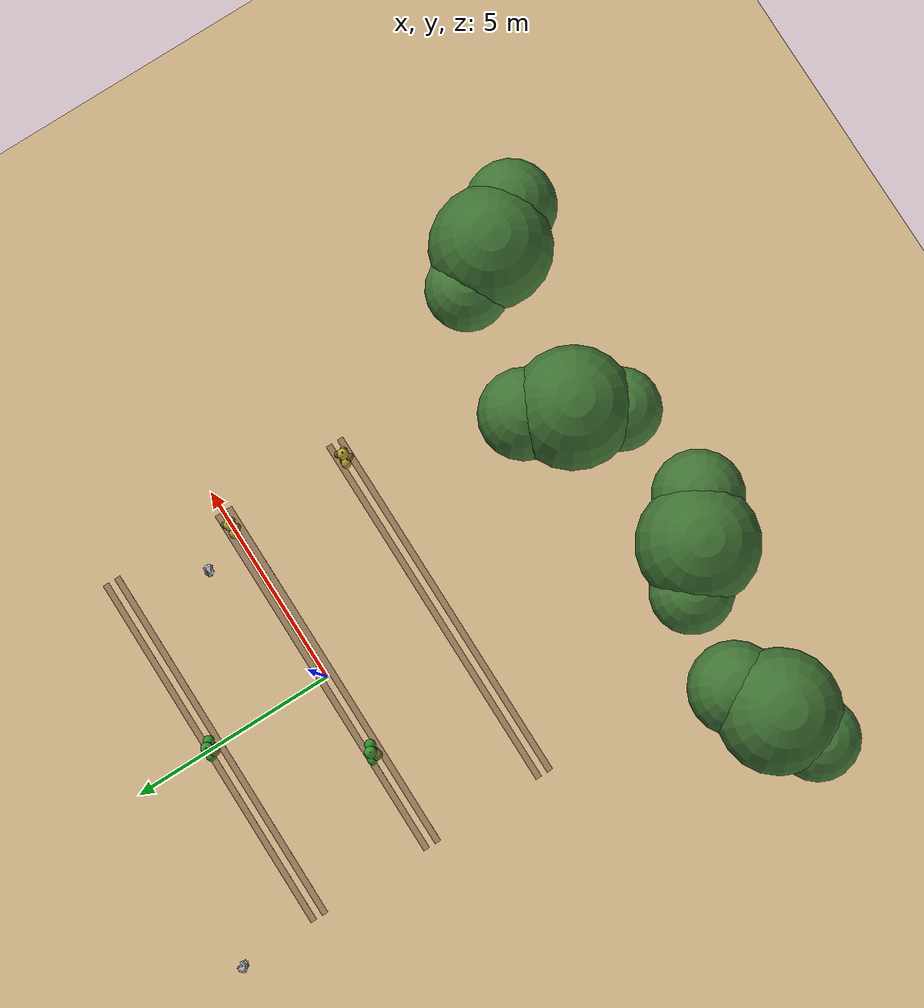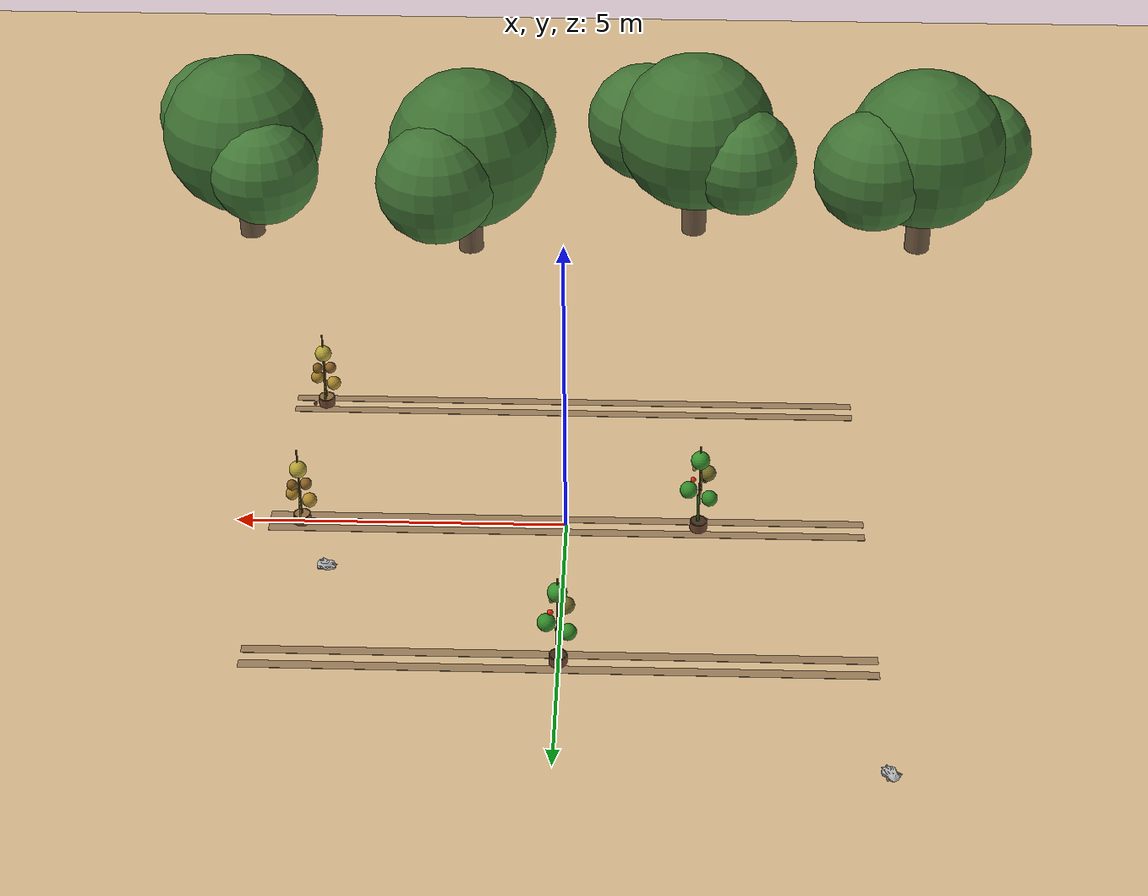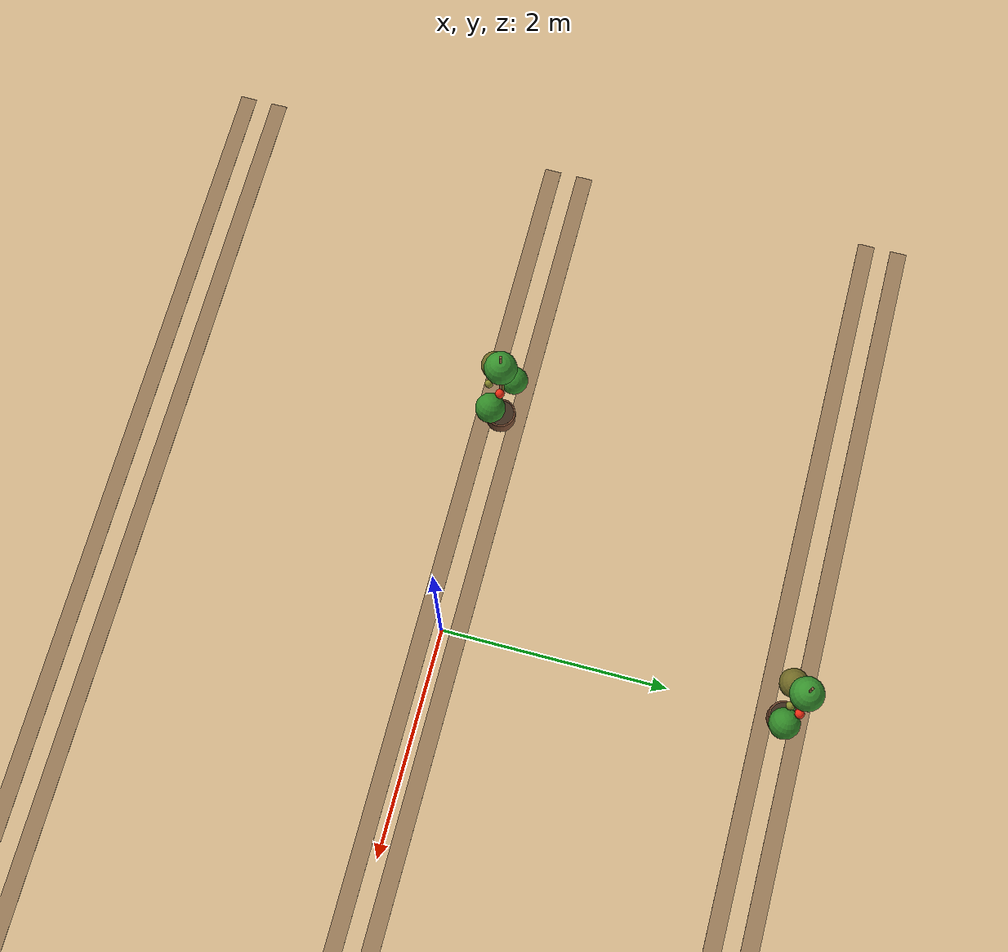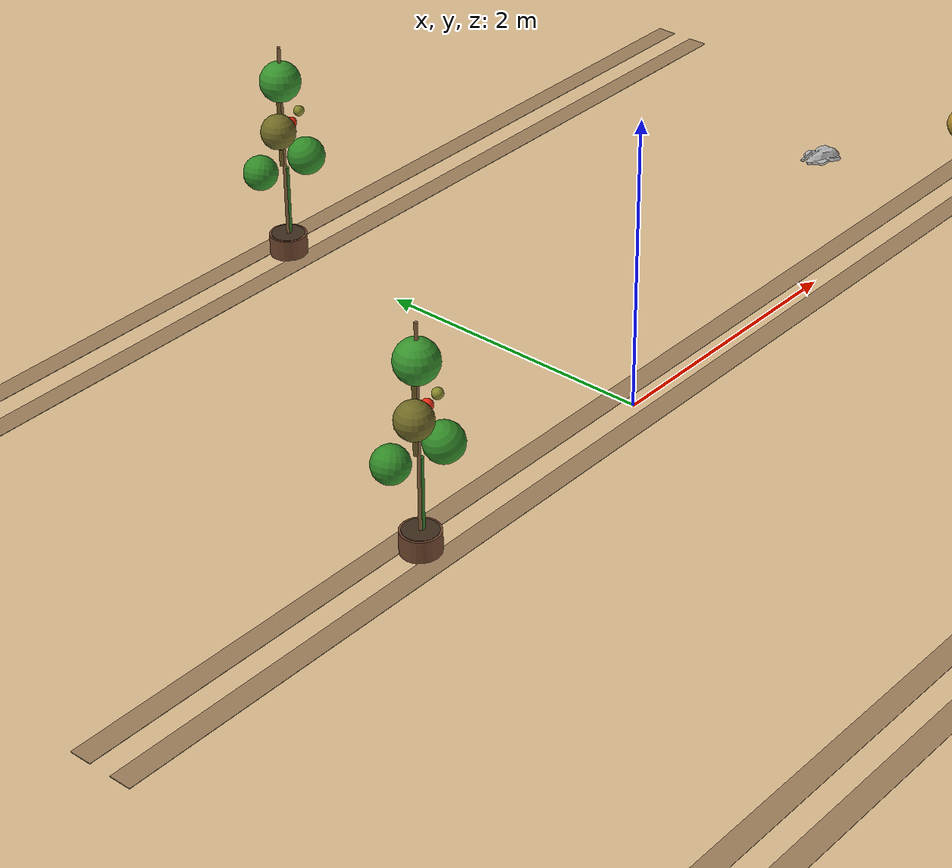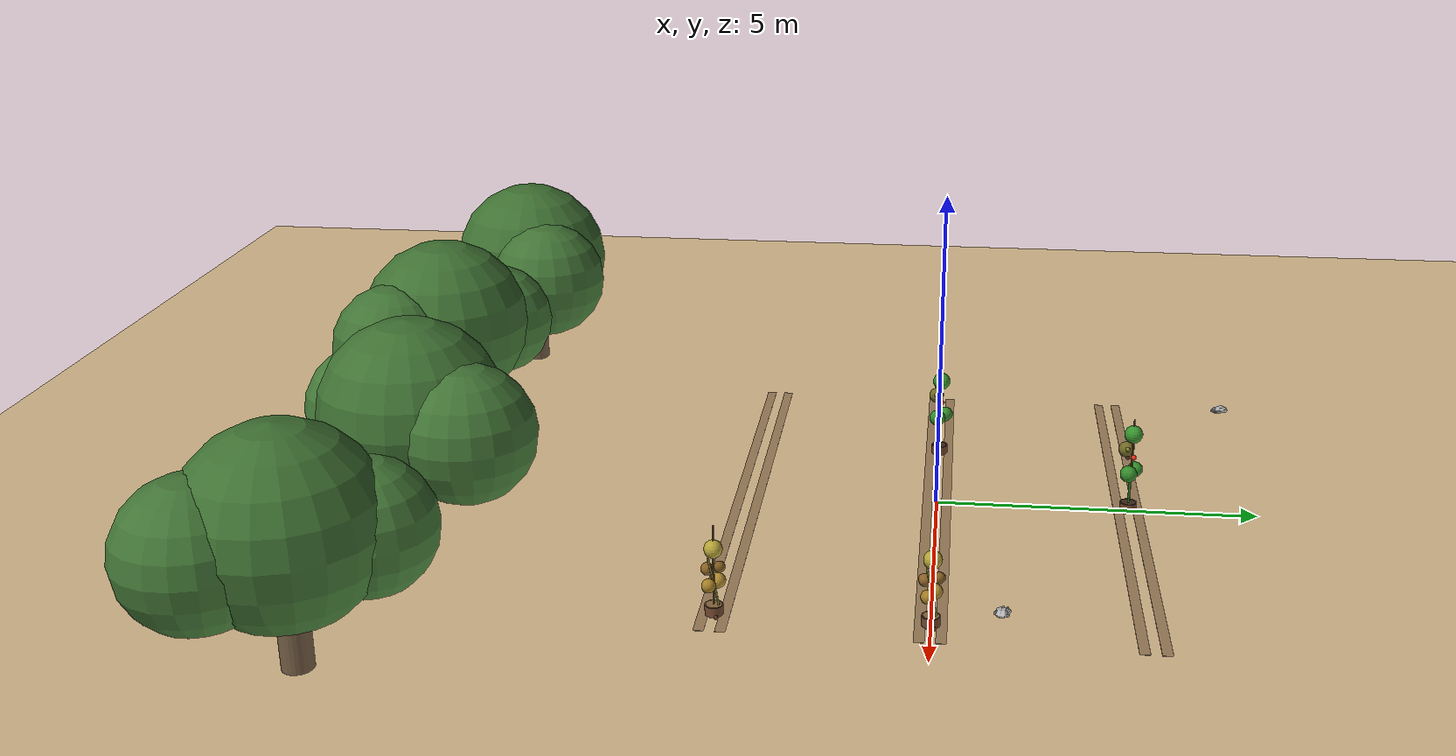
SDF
<sdf version="1.10">
 <world name="greenhouse_2026">
  <physics name="1ms" type="ignored">
   <max_step_size>0.001</max_step_size>
   <real_time_factor>1.0</real_time_factor>
  </physics>
  <plugin filename="gz-sim-physics-system" name="gz::sim::systems::Physics"/>
  <plugin filename="gz-sim-user-commands-system" name="gz::sim::systems::UserCommands"/>
  <plugin filename="gz-sim-scene-broadcaster-system" name="gz::sim::systems::SceneBroadcaster"/>
  <plugin filename="gz-sim-sensors-system" name="gz::sim::systems::Sensors">
   <render_engine>ogre2</render_engine>
  </plugin>
  <scene>
   <ambient>0.60 0.55 0.45 1</ambient>
   <background>0.86 0.80 0.68 1</background>
   <shadows>true</shadows>
  </scene>
  <light type="directional" name="sun">
   <pose>0 0 12 0 0 0</pose>
   <diffuse>1.00 0.93 0.75 1</diffuse>
   <specular>0.50 0.42 0.30 1</specular>
   <attenuation><range>1200</range><constant>0.85</constant><linear>0.01</linear></attenuation>
   <direction>-0.3 -0.4 -0.9</direction>
  </light>
  <light type="directional" name="fill_light">
   <pose>0 0 8 0 0 0</pose>
   <diffuse>0.32 0.28 0.20 1</diffuse>
   <direction>0.4 0.3 -0.7</direction>
   <cast_shadows>false</cast_shadows>
  </light>
  <model name="ground_plane">
   <static>true</static>
   <link name="link">
    <collision name="collision">
     <geometry><plane><normal>0 0 1</normal><size>200 200</size></plane></geometry>
    </collision>
    <visual name="visual">
     <geometry><plane><normal>0 0 1</normal><size>200 200</size></plane></geometry>
     <material>
      <ambient>0.70 0.58 0.42 1</ambient>
      <diffuse>0.86 0.74 0.56 1</diffuse>
      <specular>0.03 0.03 0.02 1</specular>
     </material>
    </visual>
   </link>
  </model>
  <model name="furrow_strips">
   <static>true</static>
   <link name="strip_row_0_north">
    <pose>0 -2.85 0.002 0 0 0</pose>
    <visual name="v">
     <geometry><box><size>9.0 0.15 0.004</size></box></geometry>
     <material><ambient>0.50 0.40 0.28 1</ambient><diffuse>0.62 0.50 0.36 1</diffuse></material>
    </visual>
   </link>
   <link name="strip_row_0_south">
    <pose>0 -3.15 0.002 0 0 0</pose>
    <visual name="v">
     <geometry><box><size>9.0 0.15 0.004</size></box></geometry>
     <material><ambient>0.50 0.40 0.28 1</ambient><diffuse>0.62 0.50 0.36 1</diffuse></material>
    </visual>
   </link>
   <link name="strip_row_1_north">
    <pose>0  0.15 0.002 0 0 0</pose>
    <visual name="v">
     <geometry><box><size>9.0 0.15 0.004</size></box></geometry>
     <material><ambient>0.50 0.40 0.28 1</ambient><diffuse>0.62 0.50 0.36 1</diffuse></material>
    </visual>
   </link>
   <link name="strip_row_1_south">
    <pose>0 -0.15 0.002 0 0 0</pose>
    <visual name="v">
     <geometry><box><size>9.0 0.15 0.004</size></box></geometry>
     <material><ambient>0.50 0.40 0.28 1</ambient><diffuse>0.62 0.50 0.36 1</diffuse></material>
    </visual>
   </link>
   <link name="strip_row_2_north">
    <pose>0  3.15 0.002 0 0 0</pose>
    <visual name="v">
     <geometry><box><size>9.0 0.15 0.004</size></box></geometry>
     <material><ambient>0.50 0.40 0.28 1</ambient><diffuse>0.62 0.50 0.36 1</diffuse></material>
    </visual>
   </link>
   <link name="strip_row_2_south">
    <pose>0  2.85 0.002 0 0 0</pose>
    <visual name="v">
     <geometry><box><size>9.0 0.15 0.004</size></box></geometry>
     <material><ambient>0.50 0.40 0.28 1</ambient><diffuse>0.62 0.50 0.36 1</diffuse></material>
    </visual>
   </link>
  </model>
  <include><name>tomato_0_4</name><pose>4.0 -3.0 0 0 0 0</pose><uri>model://tomato_plant_wilted</uri></include>
  <include>
   <name>tomato_1_1</name>
   <pose>-2.0  0.0 0 0 0 0</pose>
   <uri>model://tomato_plant_diseased</uri>
  </include>
  <include><name>tomato_1_4</name><pose>4.0  0.0 0 0 0 0</pose><uri>model://tomato_plant_wilted</uri></include>
  <include>
   <name>tomato_2_2</name>
   <pose>0.0  3.0 0 0 0 0</pose>
   <uri>model://tomato_plant_diseased</uri>
  </include>
  <include><name>fig_s1</name><pose>-6.0 -8.0 0 0 0  0.7</pose><uri>model://fig_tree</uri></include>
  <include><name>fig_s2</name><pose>-2.0 -8.5 0 0 0 -0.4</pose><uri>model://fig_tree</uri></include>
  <include><name>fig_s3</name><pose>2.0 -7.8 0 0 0  1.3</pose><uri>model://fig_tree</uri></include>
  <include><name>fig_s4</name><pose>6.0 -8.2 0 0 0 -0.8</pose><uri>model://fig_tree</uri></include>
  <include><name>chicken_1</name><pose>-4.5  5.0 0 0 0  0.6</pose><uri>model://chicken</uri></include>
  <include><name>chicken_2</name><pose>3.5  1.0 0 0 0 -1.8</pose><uri>model://chicken</uri></include>
 </world>
</sdf>

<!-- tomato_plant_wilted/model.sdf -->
<sdf version="1.10">
  <model name="tomato_plant_wilted">
    <static>true</static>

    <!-- Same pot + dry soil top -->
    <link name="pot">
      <pose>0 0 0.075 0 0 0</pose>
      <visual name="v"><geometry><cylinder><radius>0.13</radius><length>0.15</length></cylinder></geometry>
        <material><ambient>0.30 0.20 0.13 1</ambient><diffuse>0.45 0.28 0.18 1</diffuse></material>
      </visual>
      <collision name="c"><geometry><cylinder><radius>0.13</radius><length>0.15</length></cylinder></geometry></collision>
    </link>
    <link name="pot_soil">
      <pose>0 0 0.148 0 0 0</pose>
      <visual name="v"><geometry><cylinder><radius>0.115</radius><length>0.01</length></cylinder></geometry>
        <material><ambient>0.45 0.35 0.20 1</ambient><diffuse>0.55 0.42 0.25 1</diffuse></material>
      </visual>
    </link>

    <!-- Stake -->
    <link name="stake">
      <pose>0 0 0.75 0 0 0</pose>
      <visual name="v"><geometry><cylinder><radius>0.012</radius><length>1.2</length></cylinder></geometry>
        <material><ambient>0.35 0.25 0.15 1</ambient><diffuse>0.55 0.40 0.25 1</diffuse></material>
      </visual>
    </link>

    <!-- Brown/yellowing stem (smaller, broken) -->
    <link name="stem">
      <pose>0.015 0 0.50 0.20 0 0</pose>           <!-- tilted = drooping -->
      <visual name="v"><geometry><cylinder><radius>0.015</radius><length>0.75</length></cylinder></geometry>
        <material><ambient>0.45 0.40 0.15 1</ambient><diffuse>0.60 0.55 0.20 1</diffuse></material>
      </visual>
    </link>

    <!-- Drooping yellow-brown leaves (lower positions, hanging) -->
    <link name="leaf_droop_1">
      <pose>-0.14 0.04 0.45 1.0 0 0.3</pose>
      <visual name="v"><geometry><sphere><radius>0.11</radius></sphere></geometry>
        <material><ambient>0.55 0.42 0.12 1</ambient><diffuse>0.70 0.55 0.18 1</diffuse></material>
      </visual>
    </link>
    <link name="leaf_droop_2">
      <pose>0.13 -0.05 0.50 -0.9 0 -0.2</pose>
      <visual name="v"><geometry><sphere><radius>0.10</radius></sphere></geometry>
        <material><ambient>0.50 0.38 0.10 1</ambient><diffuse>0.65 0.50 0.15 1</diffuse></material>
      </visual>
    </link>
    <link name="leaf_brown_1">
      <pose>-0.08 -0.10 0.65 0.7 0 0</pose>
      <visual name="v"><geometry><sphere><radius>0.09</radius></sphere></geometry>
        <material><ambient>0.42 0.28 0.10 1</ambient><diffuse>0.55 0.38 0.15 1</diffuse></material>     <!-- brown -->
      </visual>
    </link>
    <link name="leaf_brown_2">
      <pose>0.09 0.10 0.78 0 0 0</pose>
      <visual name="v"><geometry><sphere><radius>0.08</radius></sphere></geometry>
        <material><ambient>0.38 0.25 0.08 1</ambient><diffuse>0.50 0.35 0.12 1</diffuse></material>
      </visual>
    </link>
    <link name="leaf_yellow_top">
      <pose>0.00 0.00 1.00 0 0 0</pose>
      <visual name="v"><geometry><sphere><radius>0.13</radius></sphere></geometry>
        <material><ambient>0.55 0.50 0.18 1</ambient><diffuse>0.72 0.65 0.22 1</diffuse></material>
      </visual>
    </link>

    <!-- One shriveled brown leftover fruit on the ground beside the pot -->
    <link name="dropped_fruit">
      <pose>0.18 0.05 0.04 0 0 0</pose>
      <visual name="v"><geometry><sphere><radius>0.030</radius></sphere></geometry>
        <material><ambient>0.30 0.15 0.08 1</ambient><diffuse>0.42 0.22 0.12 1</diffuse></material>
      </visual>
    </link>

    <joint name="j_stake" type="fixed"><parent>pot</parent><child>stake</child></joint>
    <joint name="j_soil"  type="fixed"><parent>pot</parent><child>pot_soil</child></joint>
    <joint name="j_stem"  type="fixed"><parent>stake</parent><child>stem</child></joint>
    <joint name="j_l1"    type="fixed"><parent>stake</parent><child>leaf_droop_1</child></joint>
    <joint name="j_l2"    type="fixed"><parent>stake</parent><child>leaf_droop_2</child></joint>
    <joint name="j_l3"    type="fixed"><parent>stake</parent><child>leaf_brown_1</child></joint>
    <joint name="j_l4"    type="fixed"><parent>stake</parent><child>leaf_brown_2</child></joint>
    <joint name="j_l5"    type="fixed"><parent>stake</parent><child>leaf_yellow_top</child></joint>
    <joint name="j_fr"    type="fixed"><parent>pot</parent><child>dropped_fruit</child></joint>
  </model>
</sdf>

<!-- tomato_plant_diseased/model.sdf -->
<sdf version="1.10">
  <model name="tomato_plant_diseased">
    <static>true</static>

    <link name="pot">
      <pose>0 0 0.075 0 0 0</pose>
      <visual name="v"><geometry><cylinder><radius>0.13</radius><length>0.15</length></cylinder></geometry>
        <material><ambient>0.30 0.20 0.13 1</ambient><diffuse>0.45 0.28 0.18 1</diffuse></material>
      </visual>
      <collision name="c"><geometry><cylinder><radius>0.13</radius><length>0.15</length></cylinder></geometry></collision>
    </link>
    <link name="pot_soil">
      <pose>0 0 0.148 0 0 0</pose>
      <visual name="v"><geometry><cylinder><radius>0.115</radius><length>0.01</length></cylinder></geometry>
        <material><ambient>0.18 0.13 0.08 1</ambient><diffuse>0.25 0.18 0.12 1</diffuse></material>
      </visual>
    </link>

    <link name="stake">
      <pose>0 0 0.85 0 0 0</pose>
      <visual name="v"><geometry><cylinder><radius>0.012</radius><length>1.4</length></cylinder></geometry>
        <material><ambient>0.35 0.25 0.15 1</ambient><diffuse>0.55 0.40 0.25 1</diffuse></material>
      </visual>
    </link>

    <!-- Stem (greener at base, brown at top — typical late blight progression) -->
    <link name="stem_lower">
      <pose>0.015 0 0.40 0 0 0</pose>
      <visual name="v"><geometry><cylinder><radius>0.018</radius><length>0.50</length></cylinder></geometry>
        <material><ambient>0.14 0.30 0.10 1</ambient><diffuse>0.20 0.48 0.15 1</diffuse></material>
      </visual>
    </link>
    <link name="stem_upper">
      <pose>-0.015 0.010 0.95 0 0 0</pose>
      <visual name="v"><geometry><cylinder><radius>0.015</radius><length>0.55</length></cylinder></geometry>
        <material><ambient>0.30 0.25 0.10 1</ambient><diffuse>0.45 0.38 0.15 1</diffuse></material>
      </visual>
    </link>

    <!-- Mostly green leaves with one brown patch — disease in progress -->
    <link name="leaves_healthy_l">
      <pose>-0.15 0.08 0.65 0 0.4 0.3</pose>
      <visual name="v"><geometry><sphere><radius>0.12</radius></sphere></geometry>
        <material><ambient>0.14 0.36 0.11 1</ambient><diffuse>0.20 0.55 0.16 1</diffuse></material>
      </visual>
    </link>
    <link name="leaves_healthy_r">
      <pose>0.16 -0.05 0.70 0 -0.4 -0.2</pose>
      <visual name="v"><geometry><sphere><radius>0.13</radius></sphere></geometry>
        <material><ambient>0.14 0.36 0.11 1</ambient><diffuse>0.20 0.55 0.16 1</diffuse></material>
      </visual>
    </link>
    <link name="leaves_blighted">
      <pose>-0.12 -0.08 1.00 0 0 0</pose>
      <visual name="v"><geometry><sphere><radius>0.12</radius></sphere></geometry>
        <material><ambient>0.30 0.32 0.10 1</ambient><diffuse>0.45 0.42 0.15 1</diffuse></material>     <!-- yellow-green -->
      </visual>
    </link>
    <link name="leaves_top">
      <pose>0.00 0.00 1.30 0 0 0</pose>
      <visual name="v"><geometry><sphere><radius>0.14</radius></sphere></geometry>
        <material><ambient>0.16 0.40 0.12 1</ambient><diffuse>0.22 0.58 0.18 1</diffuse></material>
      </visual>
    </link>

    <!-- Dark blight spots on the leaves (small dark spheres) -->
    <link name="spot_1"><pose>-0.12 0.10 0.66 0 0 0</pose>
      <visual name="v"><geometry><sphere><radius>0.020</radius></sphere></geometry>
        <material><ambient>0.10 0.06 0.04 1</ambient><diffuse>0.15 0.08 0.05 1</diffuse></material>
      </visual>
    </link>
    <link name="spot_2"><pose>-0.18 0.04 0.67 0 0 0</pose>
      <visual name="v"><geometry><sphere><radius>0.018</radius></sphere></geometry>
        <material><ambient>0.10 0.06 0.04 1</ambient><diffuse>0.15 0.08 0.05 1</diffuse></material>
      </visual>
    </link>
    <link name="spot_3"><pose>0.18 -0.04 0.71 0 0 0</pose>
      <visual name="v"><geometry><sphere><radius>0.022</radius></sphere></geometry>
        <material><ambient>0.10 0.06 0.04 1</ambient><diffuse>0.15 0.08 0.05 1</diffuse></material>
      </visual>
    </link>

    <!-- Aphid cluster (tiny yellowish dots on a leaf) — VLA target class "pest" -->
    <link name="aphid_a"><pose>0.13 -0.02 0.72 0 0 0</pose>
      <visual name="v"><geometry><sphere><radius>0.005</radius></sphere></geometry>
        <material><ambient>0.55 0.50 0.10 1</ambient><diffuse>0.75 0.68 0.15 1</diffuse></material>
      </visual>
    </link>
    <link name="aphid_b"><pose>0.14 -0.05 0.71 0 0 0</pose>
      <visual name="v"><geometry><sphere><radius>0.005</radius></sphere></geometry>
        <material><ambient>0.55 0.50 0.10 1</ambient><diffuse>0.75 0.68 0.15 1</diffuse></material>
      </visual>
    </link>
    <link name="aphid_c"><pose>0.15 -0.03 0.73 0 0 0</pose>
      <visual name="v"><geometry><sphere><radius>0.005</radius></sphere></geometry>
        <material><ambient>0.55 0.50 0.10 1</ambient><diffuse>0.75 0.68 0.15 1</diffuse></material>
      </visual>
    </link>
    <link name="aphid_d"><pose>0.155 -0.045 0.715 0 0 0</pose>
      <visual name="v"><geometry><sphere><radius>0.005</radius></sphere></geometry>
        <material><ambient>0.55 0.50 0.10 1</ambient><diffuse>0.75 0.68 0.15 1</diffuse></material>
      </visual>
    </link>

    <!-- A caterpillar resting on a leaf (small green elongated cylinder) -->
    <link name="caterpillar">
      <pose>-0.10 0.05 0.66 0 1.5708 0.3</pose>
      <visual name="v"><geometry><cylinder><radius>0.010</radius><length>0.05</length></cylinder></geometry>
        <material><ambient>0.40 0.55 0.12 1</ambient><diffuse>0.55 0.72 0.18 1</diffuse></material>
      </visual>
    </link>

    <!-- Fruits: 1 healthy red, 1 rotted/black, 1 unripe with blight -->
    <link name="fruit_healthy"><pose>0.10 0.02 0.95 0 0 0</pose>
      <visual name="v"><geometry><sphere><radius>0.040</radius></sphere></geometry>
        <material><ambient>0.75 0.10 0.05 1</ambient><diffuse>0.95 0.18 0.08 1</diffuse><specular>0.4 0.1 0.1 1</specular></material>
      </visual>
      <collision name="c"><geometry><sphere><radius>0.040</radius></sphere></geometry></collision>
    </link>
    <link name="fruit_rotted"><pose>-0.08 -0.05 0.88 0 0 0</pose>
      <visual name="v"><geometry><sphere><radius>0.038</radius></sphere></geometry>
        <material><ambient>0.18 0.10 0.05 1</ambient><diffuse>0.28 0.16 0.08 1</diffuse></material>           <!-- blackened rot -->
      </visual>
      <collision name="c"><geometry><sphere><radius>0.038</radius></sphere></geometry></collision>
    </link>
    <link name="fruit_blighted"><pose>0.08 -0.08 1.08 0 0 0</pose>
      <visual name="v"><geometry><sphere><radius>0.036</radius></sphere></geometry>
        <material><ambient>0.40 0.45 0.12 1</ambient><diffuse>0.55 0.55 0.18 1</diffuse></material>           <!-- sickly yellow-green -->
      </visual>
      <collision name="c"><geometry><sphere><radius>0.036</radius></sphere></geometry></collision>
    </link>

    <!-- Joints -->
    <joint name="j_stake" type="fixed"><parent>pot</parent><child>stake</child></joint>
    <joint name="j_soil"  type="fixed"><parent>pot</parent><child>pot_soil</child></joint>
    <joint name="j_sl"    type="fixed"><parent>stake</parent><child>stem_lower</child></joint>
    <joint name="j_su"    type="fixed"><parent>stake</parent><child>stem_upper</child></joint>
    <joint name="j_lh_l"  type="fixed"><parent>stake</parent><child>leaves_healthy_l</child></joint>
    <joint name="j_lh_r"  type="fixed"><parent>stake</parent><child>leaves_healthy_r</child></joint>
    <joint name="j_lb"    type="fixed"><parent>stake</parent><child>leaves_blighted</child></joint>
    <joint name="j_lt"    type="fixed"><parent>stake</parent><child>leaves_top</child></joint>
    <joint name="j_sp1"   type="fixed"><parent>stake</parent><child>spot_1</child></joint>
    <joint name="j_sp2"   type="fixed"><parent>stake</parent><child>spot_2</child></joint>
    <joint name="j_sp3"   type="fixed"><parent>stake</parent><child>spot_3</child></joint>
    <joint name="j_a1"    type="fixed"><parent>stake</parent><child>aphid_a</child></joint>
    <joint name="j_a2"    type="fixed"><parent>stake</parent><child>aphid_b</child></joint>
    <joint name="j_a3"    type="fixed"><parent>stake</parent><child>aphid_c</child></joint>
    <joint name="j_a4"    type="fixed"><parent>stake</parent><child>aphid_d</child></joint>
    <joint name="j_cat"   type="fixed"><parent>stake</parent><child>caterpillar</child></joint>
    <joint name="j_fh"    type="fixed"><parent>stake</parent><child>fruit_healthy</child></joint>
    <joint name="j_fr"    type="fixed"><parent>stake</parent><child>fruit_rotted</child></joint>
    <joint name="j_fb"    type="fixed"><parent>stake</parent><child>fruit_blighted</child></joint>
  </model>
</sdf>

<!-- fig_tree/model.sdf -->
<sdf version="1.10">
  <model name="fig_tree">
    <static>true</static>

    <!-- Lower trunk — thick, slightly knobby look (two cylinder segments) -->
    <link name="trunk_lower">
      <pose>0 0 0.40 0 0 0</pose>
      <visual name="v"><geometry><cylinder><radius>0.22</radius><length>0.80</length></cylinder></geometry>
        <material>
          <ambient>0.30 0.24 0.18 1</ambient>
          <diffuse>0.45 0.36 0.26 1</diffuse>
        </material>
      </visual>
      <collision name="c"><geometry><cylinder><radius>0.22</radius><length>0.80</length></cylinder></geometry></collision>
    </link>
    <link name="trunk_upper">
      <pose>0.05 0 1.15 0 0.10 0</pose>           <!-- slight tilt for character -->
      <visual name="v"><geometry><cylinder><radius>0.18</radius><length>0.70</length></cylinder></geometry>
        <material>
          <ambient>0.32 0.26 0.19 1</ambient>
          <diffuse>0.48 0.38 0.28 1</diffuse>
        </material>
      </visual>
    </link>

    <!-- Broad, low canopy — characteristic of figs (3 overlapping spheres) -->
    <link name="canopy_main">
      <pose>0 0 2.05 0 0 0</pose>
      <visual name="v"><geometry><sphere><radius>1.40</radius></sphere></geometry>
        <material>
          <ambient>0.18 0.32 0.15 1</ambient>     <!-- darker green than olive -->
          <diffuse>0.25 0.45 0.20 1</diffuse>
        </material>
      </visual>
    </link>
    <link name="canopy_left">
      <pose>-1.00 0.30 1.85 0 0 0</pose>
      <visual name="v"><geometry><sphere><radius>0.95</radius></sphere></geometry>
        <material>
          <ambient>0.20 0.34 0.16 1</ambient>
          <diffuse>0.27 0.48 0.22 1</diffuse>
        </material>
      </visual>
    </link>
    <link name="canopy_right">
      <pose>1.05 -0.20 1.90 0 0 0</pose>
      <visual name="v"><geometry><sphere><radius>1.05</radius></sphere></geometry>
        <material>
          <ambient>0.19 0.33 0.15 1</ambient>
          <diffuse>0.26 0.46 0.21 1</diffuse>
        </material>
      </visual>
    </link>

    <!-- A handful of figs (dark purple-burgundy) hanging on the canopy -->
    <link name="fig_1"><pose> 0.70 0.40 1.60 0 0 0</pose>
      <visual name="v"><geometry><sphere><radius>0.06</radius></sphere></geometry>
        <material><ambient>0.30 0.10 0.18 1</ambient><diffuse>0.45 0.15 0.25 1</diffuse><specular>0.2 0.1 0.15 1</specular></material>
      </visual>
    </link>
    <link name="fig_2"><pose>-0.50 0.60 1.70 0 0 0</pose>
      <visual name="v"><geometry><sphere><radius>0.055</radius></sphere></geometry>
        <material><ambient>0.32 0.10 0.20 1</ambient><diffuse>0.48 0.16 0.28 1</diffuse><specular>0.2 0.1 0.15 1</specular></material>
      </visual>
    </link>
    <link name="fig_3"><pose> 0.20 -0.55 1.55 0 0 0</pose>
      <visual name="v"><geometry><sphere><radius>0.05</radius></sphere></geometry>
        <material><ambient>0.30 0.10 0.18 1</ambient><diffuse>0.45 0.15 0.25 1</diffuse><specular>0.2 0.1 0.15 1</specular></material>
      </visual>
    </link>
    <link name="fig_4"><pose>-0.80 -0.30 1.65 0 0 0</pose>
      <visual name="v"><geometry><sphere><radius>0.055</radius></sphere></geometry>
        <material><ambient>0.28 0.09 0.17 1</ambient><diffuse>0.42 0.14 0.24 1</diffuse><specular>0.2 0.1 0.15 1</specular></material>
      </visual>
    </link>
    <link name="fig_5"><pose> 0.95 -0.45 1.75 0 0 0</pose>
      <visual name="v"><geometry><sphere><radius>0.05</radius></sphere></geometry>
        <material><ambient>0.32 0.10 0.20 1</ambient><diffuse>0.48 0.16 0.28 1</diffuse><specular>0.2 0.1 0.15 1</specular></material>
      </visual>
    </link>

    <joint name="j_trunk_u"  type="fixed"><parent>trunk_lower</parent><child>trunk_upper</child></joint>
    <joint name="j_main"     type="fixed"><parent>trunk_lower</parent><child>canopy_main</child></joint>
    <joint name="j_left"     type="fixed"><parent>trunk_lower</parent><child>canopy_left</child></joint>
    <joint name="j_right"    type="fixed"><parent>trunk_lower</parent><child>canopy_right</child></joint>
    <joint name="j_f1"       type="fixed"><parent>trunk_lower</parent><child>fig_1</child></joint>
    <joint name="j_f2"       type="fixed"><parent>trunk_lower</parent><child>fig_2</child></joint>
    <joint name="j_f3"       type="fixed"><parent>trunk_lower</parent><child>fig_3</child></joint>
    <joint name="j_f4"       type="fixed"><parent>trunk_lower</parent><child>fig_4</child></joint>
    <joint name="j_f5"       type="fixed"><parent>trunk_lower</parent><child>fig_5</child></joint>
  </model>
</sdf>

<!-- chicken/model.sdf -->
<sdf version='1.6'>
  <model name='chicken'>
    <link name='link_0'>
      <inertial>
        <mass>1</mass>
        <inertia>
          <ixx>0.166667</ixx>
          <ixy>0</ixy>
          <ixz>0</ixz>
          <iyy>0.166667</iyy>
          <iyz>0</iyz>
          <izz>0.166667</izz>
        </inertia>
      </inertial>
      <pose frame=''>-0 0 0 0 -0 0</pose>
      <visual name='visual'>
        <pose frame=''>0 0 0 0 -0 0</pose>
        <geometry>
          <mesh>
            <uri>model://chicken/meshes/chicken.dae</uri>
            <scale>1 1 1</scale>
          </mesh>
        </geometry>

        <transparency>0</transparency>
        <cast_shadows>0</cast_shadows>
      </visual>
      <collision name='collision'>
        <laser_retro>0</laser_retro>
        <max_contacts>10</max_contacts>
        <pose frame=''>0 0 0 0 -0 0</pose>
        <geometry>
          <mesh>
            <uri>model://chicken/meshes/chicken.dae</uri>
            <scale>1 1 1</scale>
          </mesh>
        </geometry>
        <surface>
          <friction>
            <ode>
              <mu>1</mu>
              <mu2>1</mu2>
              <fdir1>0 0 0</fdir1>
              <slip1>0</slip1>
              <slip2>0</slip2>
            </ode>
            <torsional>
              <coefficient>1</coefficient>
              <patch_radius>0</patch_radius>
              <surface_radius>0</surface_radius>
              <use_patch_radius>1</use_patch_radius>
              <ode>
                <slip>0</slip>
              </ode>
            </torsional>
          </friction>
          <bounce>
            <restitution_coefficient>0</restitution_coefficient>
            <threshold>1e+06</threshold>
          </bounce>
          <contact>
            <collide_without_contact>0</collide_without_contact>
            <collide_without_contact_bitmask>1</collide_without_contact_bitmask>
            <collide_bitmask>1</collide_bitmask>
            <ode>
              <soft_cfm>0</soft_cfm>
              <soft_erp>0.2</soft_erp>
              <kp>1e+13</kp>
              <kd>1</kd>
              <max_vel>0.01</max_vel>
              <min_depth>0</min_depth>
            </ode>
            <bullet>
              <split_impulse>1</split_impulse>
              <split_impulse_penetration_threshold>-0.01</split_impulse_penetration_threshold>
              <soft_cfm>0</soft_cfm>
              <soft_erp>0.2</soft_erp>
              <kp>1e+13</kp>
              <kd>1</kd>
            </bullet>
          </contact>
        </surface>
      </collision>
    </link>
    <static>1</static>
    <allow_auto_disable>1</allow_auto_disable>
  </model>
</sdf>
